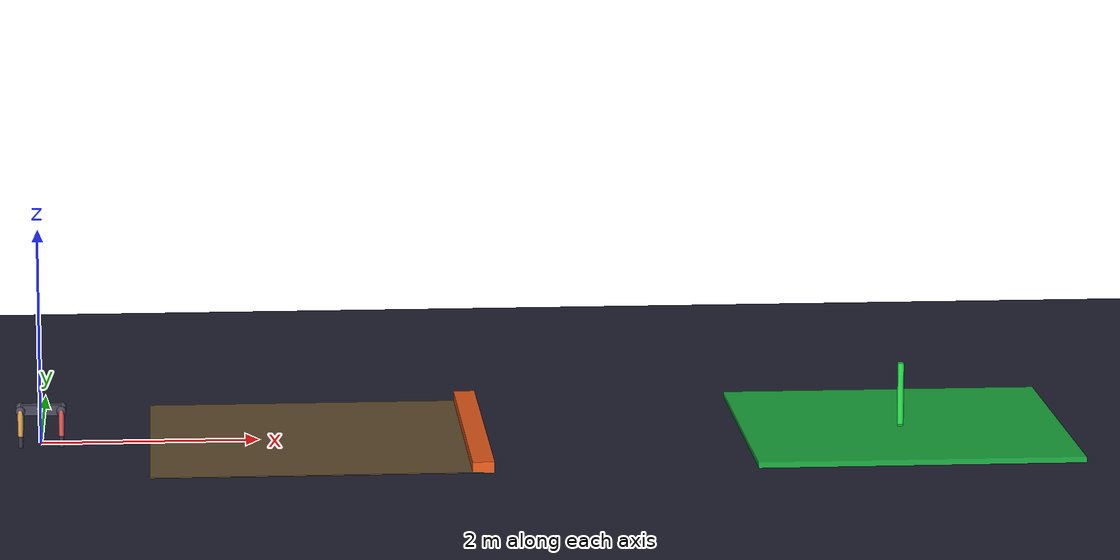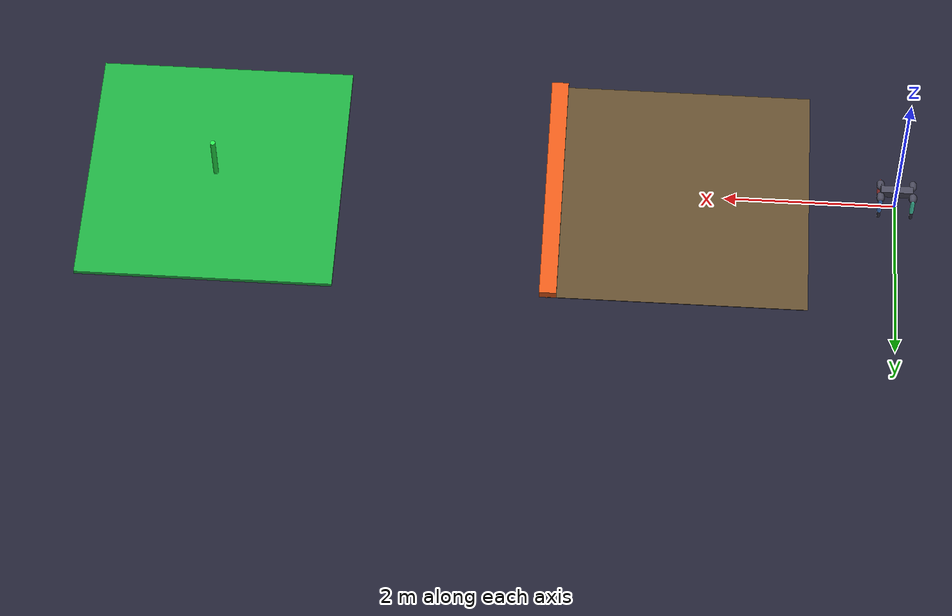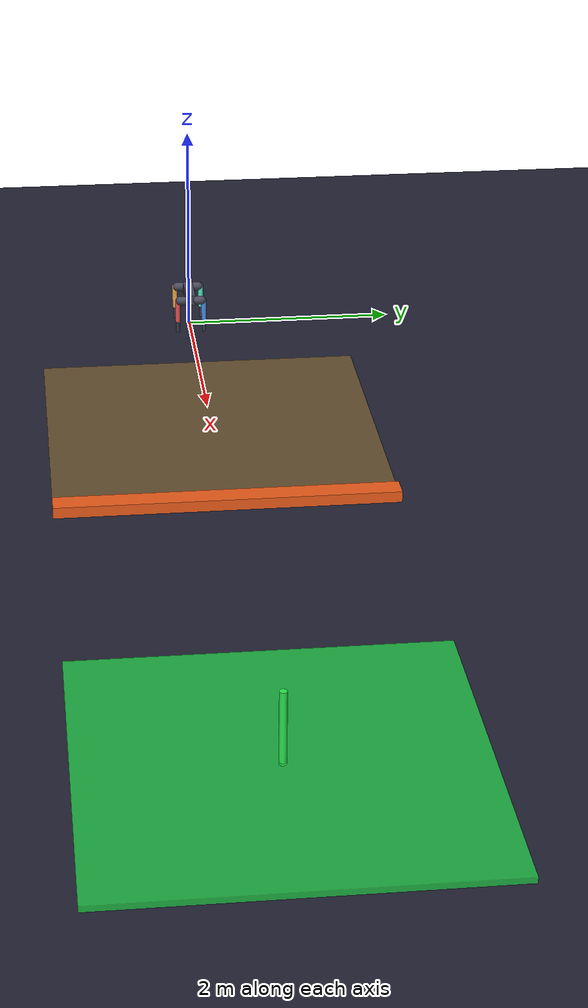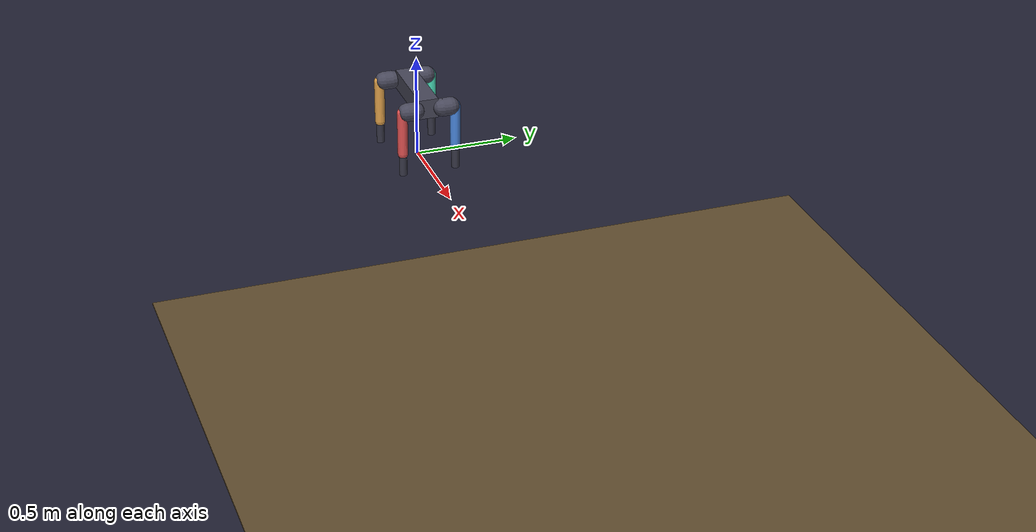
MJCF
<mujoco model="go1">

  <compiler angle="radian" autolimits="true"/>
  <option gravity="0 0 -9.81" timestep="0.002" iterations="50" tolerance="1e-10"/>

  <default>
    <joint damping="0.08" frictionloss="0.02" armature="0.01"/>
    <geom contype="1" conaffinity="1" condim="3"
          friction="0.8 0.02 0.001" solref="0.005 1" solimp="0.98 0.99 0.001"/>
    <motor gear="1" ctrllimited="true" ctrlrange="-33.5 33.5"/>
  </default>

  <asset>
    <texture type="skybox" builtin="gradient"
             rgb1="0.05 0.05 0.12" rgb2="0.18 0.18 0.30" width="512" height="512"/>
    <texture name="checker" type="2d" builtin="checker"
             rgb1="0.10 0.10 0.16" rgb2="0.16 0.16 0.24" width="512" height="512"/>
    <material name="floor_mat"  texture="checker" texrepeat="6 6" texuniform="true" reflectance="0.05"/>
    <material name="body_mat"   rgba="0.28 0.28 0.35 1"/>
    <material name="leg_mat"    rgba="0.22 0.22 0.28 1"/>
  </asset>

  <worldbody>
    <light name="sun"  pos="2 2 8"  dir="-0.2 -0.2 -1" diffuse="0.8 0.8 1.0" castshadow="true"/>
    <light name="fill" pos="-3 -2 4" dir="1 0.5 -1"   diffuse="0.3 0.3 0.4"  castshadow="false"/>

    <!-- Ground -->
    <geom name="floor" type="plane" size="30 30 0.1" material="floor_mat" condim="3" friction="0.8 0.02 0.001"/>

    <!-- ── Jump task layout ────────────────────────────────────────────── -->
    <!-- Approach ramp: slight texture change before hurdle -->
    <geom name="gravel_approach" type="box" size="1.5 1.5 0.004" pos="2.5 0 0.004"
          rgba="0.38 0.30 0.18 1" friction="0.85 0.02 0.001"/>

    <!-- Hurdle: 10 cm tall obstacle the robot must bound over -->
    <geom name="hurdle" type="box" size="0.10 1.5 0.05" pos="4.0 0 0.05"
          rgba="0.90 0.35 0.10 1" friction="0.9 0.02 0.001"/>

    <!-- Goal platform: slightly raised, green tint — reach here to succeed -->
    <geom name="goal_pad" type="box" size="1.5 1.5 0.025" pos="8.0 0 0.025"
          rgba="0.15 0.80 0.30 0.85" friction="0.9 0.02 0.001"/>

    <!-- Goal marker post (visual reference) -->
    <geom name="goal_post" type="cylinder" size="0.03 0.30" pos="8.0 0 0.33"
          rgba="0.15 0.90 0.30 0.9"/>

    <!-- ══ Robot trunk ═══════════════════════════════════════════════════ -->
    <body name="trunk" pos="0 0 0.32">
      <freejoint name="root"/>
      <geom name="trunk" type="box" size="0.1881 0.0475 0.048"
            mass="9.041" material="body_mat"/>
      <site name="imu" pos="0 0 0" size="0.005"/>

      <!-- ── FL leg ──────────────────────────────────────────────────── -->
      <body name="FL_hip" pos="0.1881 0.0472 0">
        <joint name="FL_hip_joint" type="hinge" axis="1 0 0"
               range="-0.863 0.863"/>
        <geom type="capsule" size="0.044 0.020" pos="0 0.040 0"
              euler="1.5708 0 0" mass="0.591" material="body_mat"/>
        <body name="FL_thigh" pos="0 0.0838 0">
          <joint name="FL_thigh_joint" type="hinge" axis="0 -1 0"
                 range="-0.686 4.501"/>
          <geom type="capsule" size="0.025" fromto="0 0 0 0 0 -0.213"
                mass="0.921" material="leg_mat" rgba="0.30 0.55 0.90 1"/>
          <body name="FL_calf" pos="0 0 -0.213">
            <joint name="FL_calf_joint" type="hinge" axis="0 -1 0"
                   range="-2.818 -0.888"/>
            <geom type="capsule" size="0.019" fromto="0 0 0 0 0 -0.213"
                  mass="0.135" material="leg_mat"/>
            <body name="FL_foot" pos="0 0 -0.213">
              <geom name="FL_foot_geom" type="sphere" size="0.0165"
                    mass="0.06" rgba="0.30 0.55 0.90 1"/>
            </body>
          </body>
        </body>
      </body>

      <!-- ── FR leg ──────────────────────────────────────────────────── -->
      <body name="FR_hip" pos="0.1881 -0.0472 0">
        <joint name="FR_hip_joint" type="hinge" axis="-1 0 0"
               range="-0.863 0.863"/>
        <geom type="capsule" size="0.044 0.020" pos="0 -0.040 0"
              euler="1.5708 0 0" mass="0.591" material="body_mat"/>
        <body name="FR_thigh" pos="0 -0.0838 0">
          <joint name="FR_thigh_joint" type="hinge" axis="0 -1 0"
                 range="-0.686 4.501"/>
          <geom type="capsule" size="0.025" fromto="0 0 0 0 0 -0.213"
                mass="0.921" material="leg_mat" rgba="0.90 0.33 0.33 1"/>
          <body name="FR_calf" pos="0 0 -0.213">
            <joint name="FR_calf_joint" type="hinge" axis="0 -1 0"
                   range="-2.818 -0.888"/>
            <geom type="capsule" size="0.019" fromto="0 0 0 0 0 -0.213"
                  mass="0.135" material="leg_mat"/>
            <body name="FR_foot" pos="0 0 -0.213">
              <geom name="FR_foot_geom" type="sphere" size="0.0165"
                    mass="0.06" rgba="0.90 0.33 0.33 1"/>
            </body>
          </body>
        </body>
      </body>

      <!-- ── RL leg ──────────────────────────────────────────────────── -->
      <body name="RL_hip" pos="-0.1881 0.0472 0">
        <joint name="RL_hip_joint" type="hinge" axis="1 0 0"
               range="-0.863 0.863"/>
        <geom type="capsule" size="0.044 0.020" pos="0 0.040 0"
              euler="1.5708 0 0" mass="0.591" material="body_mat"/>
        <body name="RL_thigh" pos="0 0.0838 0">
          <joint name="RL_thigh_joint" type="hinge" axis="0 -1 0"
                 range="-0.686 4.501"/>
          <geom type="capsule" size="0.025" fromto="0 0 0 0 0 -0.213"
                mass="0.921" material="leg_mat" rgba="0.30 0.90 0.75 1"/>
          <body name="RL_calf" pos="0 0 -0.213">
            <joint name="RL_calf_joint" type="hinge" axis="0 -1 0"
                   range="-2.818 -0.888"/>
            <geom type="capsule" size="0.019" fromto="0 0 0 0 0 -0.213"
                  mass="0.135" material="leg_mat"/>
            <body name="RL_foot" pos="0 0 -0.213">
              <geom name="RL_foot_geom" type="sphere" size="0.0165"
                    mass="0.06" rgba="0.30 0.90 0.75 1"/>
            </body>
          </body>
        </body>
      </body>

      <!-- ── RR leg ──────────────────────────────────────────────────── -->
      <body name="RR_hip" pos="-0.1881 -0.0472 0">
        <joint name="RR_hip_joint" type="hinge" axis="-1 0 0"
               range="-0.863 0.863"/>
        <geom type="capsule" size="0.044 0.020" pos="0 -0.040 0"
              euler="1.5708 0 0" mass="0.591" material="body_mat"/>
        <body name="RR_thigh" pos="0 -0.0838 0">
          <joint name="RR_thigh_joint" type="hinge" axis="0 -1 0"
                 range="-0.686 4.501"/>
          <geom type="capsule" size="0.025" fromto="0 0 0 0 0 -0.213"
                mass="0.921" material="leg_mat" rgba="0.90 0.65 0.30 1"/>
          <body name="RR_calf" pos="0 0 -0.213">
            <joint name="RR_calf_joint" type="hinge" axis="0 -1 0"
                   range="-2.818 -0.888"/>
            <geom type="capsule" size="0.019" fromto="0 0 0 0 0 -0.213"
                  mass="0.135" material="leg_mat"/>
            <body name="RR_foot" pos="0 0 -0.213">
              <geom name="RR_foot_geom" type="sphere" size="0.0165"
                    mass="0.06" rgba="0.90 0.65 0.30 1"/>
            </body>
          </body>
        </body>
      </body>

    </body><!-- /trunk -->
  </worldbody>

  <actuator>
    <motor name="FL_hip"   joint="FL_hip_joint"   ctrlrange="-33.5 33.5"/>
    <motor name="FL_thigh" joint="FL_thigh_joint" ctrlrange="-33.5 33.5"/>
    <motor name="FL_calf"  joint="FL_calf_joint"  ctrlrange="-33.5 33.5"/>
    <motor name="FR_hip"   joint="FR_hip_joint"   ctrlrange="-33.5 33.5"/>
    <motor name="FR_thigh" joint="FR_thigh_joint" ctrlrange="-33.5 33.5"/>
    <motor name="FR_calf"  joint="FR_calf_joint"  ctrlrange="-33.5 33.5"/>
    <motor name="RL_hip"   joint="RL_hip_joint"   ctrlrange="-33.5 33.5"/>
    <motor name="RL_thigh" joint="RL_thigh_joint" ctrlrange="-33.5 33.5"/>
    <motor name="RL_calf"  joint="RL_calf_joint"  ctrlrange="-33.5 33.5"/>
    <motor name="RR_hip"   joint="RR_hip_joint"   ctrlrange="-33.5 33.5"/>
    <motor name="RR_thigh" joint="RR_thigh_joint" ctrlrange="-33.5 33.5"/>
    <motor name="RR_calf"  joint="RR_calf_joint"  ctrlrange="-33.5 33.5"/>
  </actuator>

</mujoco>
